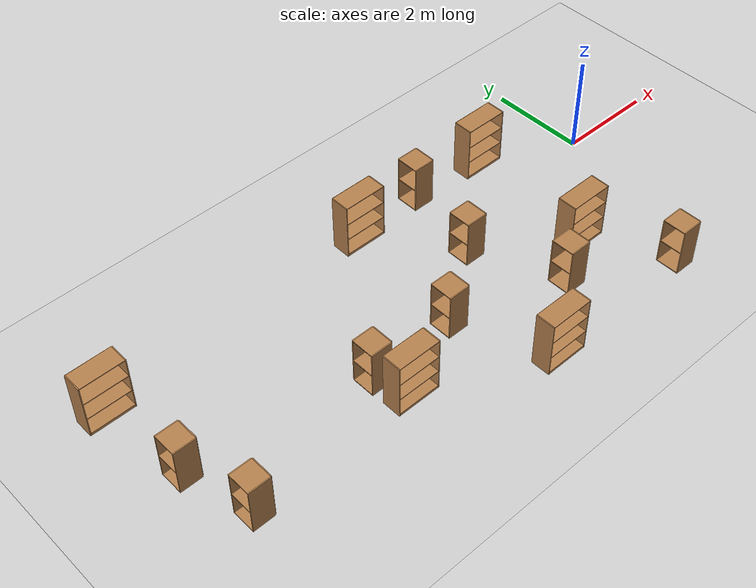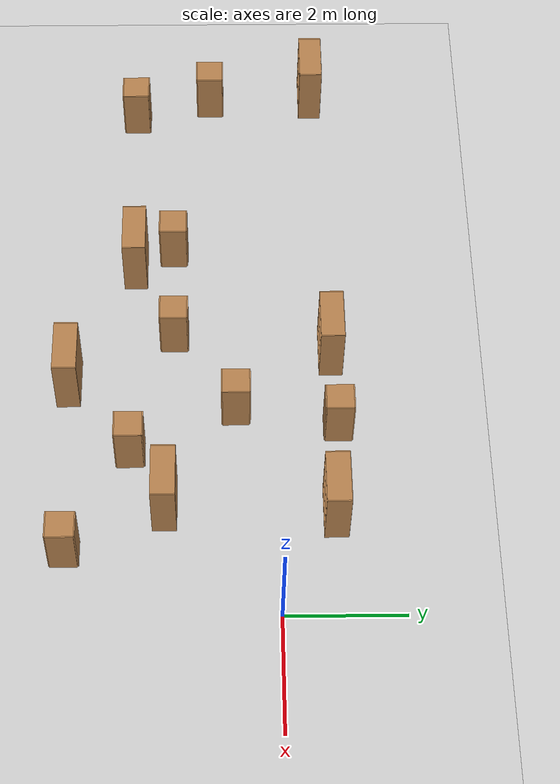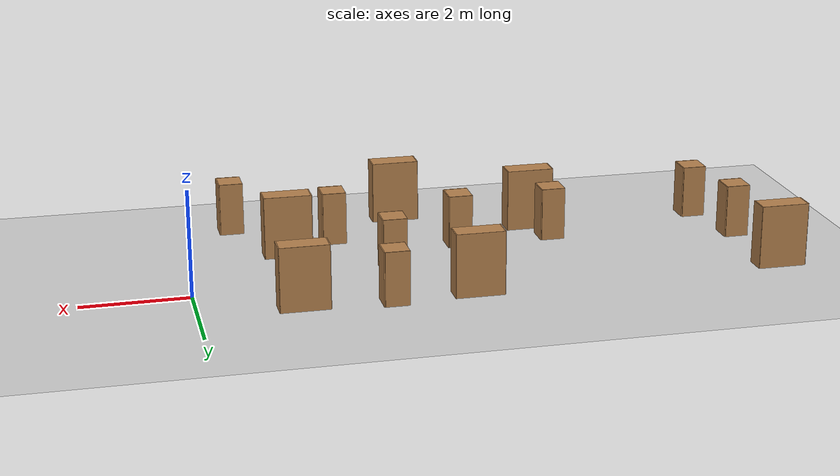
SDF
<sdf version="1.6">
 <world name="default">
  <model name="ground_plane">
   <static>1</static>
   <link name="link">
    <collision name="collision">
     <geometry><plane><normal>0 0 1</normal><size>100 100</size></plane></geometry>
     <surface><friction><ode><mu>100</mu><mu2>50</mu2></ode></friction></surface>
    </collision>
    <visual name="visual">
     <cast_shadows>0</cast_shadows>
     <geometry><plane><normal>0 0 1</normal><size>100 100</size></plane></geometry>
     <material>
      <script><uri>file://media/materials/scripts/gazebo.material</uri><name>Gazebo/Grey</name></script>
     </material>
    </visual>
   </link>
  </model>
  <model name="bookshelf_20">
   <static>1</static>
   <link name="link">
    <inertial><mass>1</mass></inertial>
    <collision name="back">
     <pose>0 0.005 0.6 0 -0 0</pose>
     <geometry><box><size>0.9 0.01 1.2</size></box></geometry>
    </collision>
    <visual name="visual1">
     <pose>0 0.005 0.6 0 -0 0</pose>
     <geometry><box><size>0.9 0.01 1.2</size></box></geometry>
     <material>
      <script><uri>file://media/materials/scripts/gazebo.material</uri><name>Gazebo/Wood</name></script>
     </material>
    </visual>
    <collision name="left_side">
     <pose>0.45 -0.195 0.6 0 -0 0</pose>
     <geometry><box><size>0.02 0.4 1.2</size></box></geometry>
    </collision>
    <visual name="visual2">
     <pose>0.45 -0.195 0.6 0 -0 0</pose>
     <geometry><box><size>0.02 0.4 1.2</size></box></geometry>
     <material>
      <script><uri>file://media/materials/scripts/gazebo.material</uri><name>Gazebo/Wood</name></script>
     </material>
    </visual>
    <collision name="right_side">
     <pose>-0.45 -0.195 0.6 0 -0 0</pose>
     <geometry><box><size>0.02 0.4 1.2</size></box></geometry>
    </collision>
    <visual name="visual3">
     <pose>-0.45 -0.195 0.6 0 -0 0</pose>
     <geometry><box><size>0.02 0.4 1.2</size></box></geometry>
     <material>
      <script><uri>file://media/materials/scripts/gazebo.material</uri><name>Gazebo/Wood</name></script>
     </material>
    </visual>
    <collision name="bottom">
     <pose>0 -0.195 0.03 0 -0 0</pose>
     <geometry><box><size>0.88 0.4 0.06</size></box></geometry>
    </collision>
    <visual name="visual4">
     <pose>0 -0.195 0.03 0 -0 0</pose>
     <geometry><box><size>0.88 0.4 0.06</size></box></geometry>
     <material>
      <script><uri>file://media/materials/scripts/gazebo.material</uri><name>Gazebo/Wood</name></script>
     </material>
    </visual>
    <collision name="top">
     <pose>0 -0.195 1.19 0 -0 0</pose>
     <geometry><box><size>0.88 0.4 0.02</size></box></geometry>
    </collision>
    <visual name="visual5">
     <pose>0 -0.195 1.19 0 -0 0</pose>
     <geometry><box><size>0.88 0.4 0.02</size></box></geometry>
     <material>
      <script><uri>file://media/materials/scripts/gazebo.material</uri><name>Gazebo/Wood</name></script>
     </material>
    </visual>
    <collision name="low_shelf">
     <pose>0 -0.195 0.43 0 -0 0</pose>
     <geometry><box><size>0.88 0.4 0.02</size></box></geometry>
    </collision>
    <visual name="visual6">
     <pose>0 -0.195 0.43 0 -0 0</pose>
     <geometry><box><size>0.88 0.4 0.02</size></box></geometry>
     <material>
      <script><uri>file://media/materials/scripts/gazebo.material</uri><name>Gazebo/Wood</name></script>
     </material>
    </visual>
    <collision name="high_shelf">
     <pose>0 -0.195 0.8 0 -0 0</pose>
     <geometry><box><size>0.88 0.4 0.02</size></box></geometry>
    </collision>
    <visual name="visual7">
     <pose>0 -0.195 0.8 0 -0 0</pose>
     <geometry><box><size>0.88 0.4 0.02</size></box></geometry>
     <material>
      <script><uri>file://media/materials/scripts/gazebo.material</uri><name>Gazebo/Wood</name></script>
     </material>
    </visual>
   </link>
   <pose>-5.00821 1.12026 0 0 -0 0</pose>
  </model>
  <model name="cabinet_13">
   <static>1</static>
   <link name="cabinet_bottom_plate">
    <inertial>
     <pose>0 0 -1 0 -0 0</pose>
     <inertia><ixx>2.05</ixx><ixy>0</ixy><ixz>0</ixz><iyy>2.05</iyy><iyz>0</iyz><izz>2.05</izz></inertia>
     <mass>25</mass>
    </inertial>
    <collision name="cabinet_bottom_plate_geom">
     <pose>0 0 0.01 0 -0 0</pose>
     <geometry><box><size>0.45 0.45 0.02</size></box></geometry>
    </collision>
    <visual name="cabinet_bottom_plate_geom_visual">
     <pose>0 0 0.01 0 -0 0</pose>
     <geometry><box><size>0.45 0.45 0.02</size></box></geometry>
     <material>
      <script><uri>file://media/materials/scripts/gazebo.material</uri><name>Gazebo/Wood</name></script>
     </material>
    </visual>
    <collision name="cabinet_bottom_plate_geom_cabinet_back_plate">
     <pose>0.235 0 0.51 0 -0 0</pose>
     <geometry><box><size>0.02 0.45 1.02</size></box></geometry>
    </collision>
    <visual name="cabinet_bottom_plate_geom_cabinet_back_plate_visual">
     <pose>0.235 0 0.51 0 -0 0</pose>
     <geometry><box><size>0.02 0.45 1.02</size></box></geometry>
     <material>
      <script><uri>file://media/materials/scripts/gazebo.material</uri><name>Gazebo/Wood</name></script>
     </material>
    </visual>
    <collision name="cabinet_bottom_plate_geom_cabinet_left_plate">
     <pose>0 0.235 0.51 0 -0 0</pose>
     <geometry><box><size>0.45 0.02 1.02</size></box></geometry>
    </collision>
    <visual name="cabinet_bottom_plate_geom_cabinet_left_plate_visual">
     <pose>0 0.235 0.51 0 -0 0</pose>
     <geometry><box><size>0.45 0.02 1.02</size></box></geometry>
     <material>
      <script><uri>file://media/materials/scripts/gazebo.material</uri><name>Gazebo/Wood</name></script>
     </material>
    </visual>
    <collision name="cabinet_bottom_plate_geom_cabinet_middle_plate">
     <pose>0 0 0.51 0 -0 0</pose>
     <geometry><box><size>0.45 0.45 0.02</size></box></geometry>
    </collision>
    <visual name="cabinet_bottom_plate_geom_cabinet_middle_plate_visual">
     <pose>0 0 0.51 0 -0 0</pose>
     <geometry><box><size>0.45 0.45 0.02</size></box></geometry>
     <material>
      <script><uri>file://media/materials/scripts/gazebo.material</uri><name>Gazebo/Wood</name></script>
     </material>
    </visual>
    <collision name="cabinet_bottom_plate_geom_cabinet_right_plate">
     <pose>0 -0.235 0.51 0 -0 0</pose>
     <geometry><box><size>0.45 0.02 1.02</size></box></geometry>
    </collision>
    <visual name="cabinet_bottom_plate_geom_cabinet_right_plate_visual">
     <pose>0 -0.235 0.51 0 -0 0</pose>
     <geometry><box><size>0.45 0.02 1.02</size></box></geometry>
     <material>
      <script><uri>file://media/materials/scripts/gazebo.material</uri><name>Gazebo/Wood</name></script>
     </material>
    </visual>
    <collision name="cabinet_bottom_plate_geom_cabinet_top_plate">
     <pose>0 0 1.01 0 -0 0</pose>
     <geometry><box><size>0.45 0.45 0.02</size></box></geometry>
    </collision>
    <visual name="cabinet_bottom_plate_geom_cabinet_top_plate_visual">
     <pose>0 0 1.01 0 -0 0</pose>
     <geometry><box><size>0.45 0.45 0.02</size></box></geometry>
     <material>
      <script><uri>file://media/materials/scripts/gazebo.material</uri><name>Gazebo/Wood</name></script>
     </material>
    </visual>
   </link>
   <pose>-3.47508 1.00889 0 0 -0 0</pose>
  </model>
  <model name="bookshelf_21">
   <static>1</static>
   <link name="link">
    <inertial><mass>1</mass></inertial>
    <collision name="back">
     <pose>0 0.005 0.6 0 -0 0</pose>
     <geometry><box><size>0.9 0.01 1.2</size></box></geometry>
    </collision>
    <visual name="visual1">
     <pose>0 0.005 0.6 0 -0 0</pose>
     <geometry><box><size>0.9 0.01 1.2</size></box></geometry>
     <material>
      <script><uri>file://media/materials/scripts/gazebo.material</uri><name>Gazebo/Wood</name></script>
     </material>
    </visual>
    <collision name="left_side">
     <pose>0.45 -0.195 0.6 0 -0 0</pose>
     <geometry><box><size>0.02 0.4 1.2</size></box></geometry>
    </collision>
    <visual name="visual2">
     <pose>0.45 -0.195 0.6 0 -0 0</pose>
     <geometry><box><size>0.02 0.4 1.2</size></box></geometry>
     <material>
      <script><uri>file://media/materials/scripts/gazebo.material</uri><name>Gazebo/Wood</name></script>
     </material>
    </visual>
    <collision name="right_side">
     <pose>-0.45 -0.195 0.6 0 -0 0</pose>
     <geometry><box><size>0.02 0.4 1.2</size></box></geometry>
    </collision>
    <visual name="visual3">
     <pose>-0.45 -0.195 0.6 0 -0 0</pose>
     <geometry><box><size>0.02 0.4 1.2</size></box></geometry>
     <material>
      <script><uri>file://media/materials/scripts/gazebo.material</uri><name>Gazebo/Wood</name></script>
     </material>
    </visual>
    <collision name="bottom">
     <pose>0 -0.195 0.03 0 -0 0</pose>
     <geometry><box><size>0.88 0.4 0.06</size></box></geometry>
    </collision>
    <visual name="visual4">
     <pose>0 -0.195 0.03 0 -0 0</pose>
     <geometry><box><size>0.88 0.4 0.06</size></box></geometry>
     <material>
      <script><uri>file://media/materials/scripts/gazebo.material</uri><name>Gazebo/Wood</name></script>
     </material>
    </visual>
    <collision name="top">
     <pose>0 -0.195 1.19 0 -0 0</pose>
     <geometry><box><size>0.88 0.4 0.02</size></box></geometry>
    </collision>
    <visual name="visual5">
     <pose>0 -0.195 1.19 0 -0 0</pose>
     <geometry><box><size>0.88 0.4 0.02</size></box></geometry>
     <material>
      <script><uri>file://media/materials/scripts/gazebo.material</uri><name>Gazebo/Wood</name></script>
     </material>
    </visual>
    <collision name="low_shelf">
     <pose>0 -0.195 0.43 0 -0 0</pose>
     <geometry><box><size>0.88 0.4 0.02</size></box></geometry>
    </collision>
    <visual name="visual6">
     <pose>0 -0.195 0.43 0 -0 0</pose>
     <geometry><box><size>0.88 0.4 0.02</size></box></geometry>
     <material>
      <script><uri>file://media/materials/scripts/gazebo.material</uri><name>Gazebo/Wood</name></script>
     </material>
    </visual>
    <collision name="high_shelf">
     <pose>0 -0.195 0.8 0 -0 0</pose>
     <geometry><box><size>0.88 0.4 0.02</size></box></geometry>
    </collision>
    <visual name="visual7">
     <pose>0 -0.195 0.8 0 -0 0</pose>
     <geometry><box><size>0.88 0.4 0.02</size></box></geometry>
     <material>
      <script><uri>file://media/materials/scripts/gazebo.material</uri><name>Gazebo/Wood</name></script>
     </material>
    </visual>
   </link>
   <pose>-1.86152 1.10866 0 0 -0 0</pose>
  </model>
  <model name="cabinet_18">
   <static>1</static>
   <link name="cabinet_bottom_plate">
    <inertial>
     <pose>0 0 -1 0 -0 0</pose>
     <inertia><ixx>2.05</ixx><ixy>0</ixy><ixz>0</ixz><iyy>2.05</iyy><iyz>0</iyz><izz>2.05</izz></inertia>
     <mass>25</mass>
    </inertial>
    <collision name="cabinet_bottom_plate_geom">
     <pose>0 0 0.01 0 -0 0</pose>
     <geometry><box><size>0.45 0.45 0.02</size></box></geometry>
    </collision>
    <visual name="cabinet_bottom_plate_geom_visual">
     <pose>0 0 0.01 0 -0 0</pose>
     <geometry><box><size>0.45 0.45 0.02</size></box></geometry>
     <material>
      <script><uri>file://media/materials/scripts/gazebo.material</uri><name>Gazebo/Wood</name></script>
     </material>
    </visual>
    <collision name="cabinet_bottom_plate_geom_cabinet_back_plate">
     <pose>0.235 0 0.51 0 -0 0</pose>
     <geometry><box><size>0.02 0.45 1.02</size></box></geometry>
    </collision>
    <visual name="cabinet_bottom_plate_geom_cabinet_back_plate_visual">
     <pose>0.235 0 0.51 0 -0 0</pose>
     <geometry><box><size>0.02 0.45 1.02</size></box></geometry>
     <material>
      <script><uri>file://media/materials/scripts/gazebo.material</uri><name>Gazebo/Wood</name></script>
     </material>
    </visual>
    <collision name="cabinet_bottom_plate_geom_cabinet_left_plate">
     <pose>0 0.235 0.51 0 -0 0</pose>
     <geometry><box><size>0.45 0.02 1.02</size></box></geometry>
    </collision>
    <visual name="cabinet_bottom_plate_geom_cabinet_left_plate_visual">
     <pose>0 0.235 0.51 0 -0 0</pose>
     <geometry><box><size>0.45 0.02 1.02</size></box></geometry>
     <material>
      <script><uri>file://media/materials/scripts/gazebo.material</uri><name>Gazebo/Wood</name></script>
     </material>
    </visual>
    <collision name="cabinet_bottom_plate_geom_cabinet_middle_plate">
     <pose>0 0 0.51 0 -0 0</pose>
     <geometry><box><size>0.45 0.45 0.02</size></box></geometry>
    </collision>
    <visual name="cabinet_bottom_plate_geom_cabinet_middle_plate_visual">
     <pose>0 0 0.51 0 -0 0</pose>
     <geometry><box><size>0.45 0.45 0.02</size></box></geometry>
     <material>
      <script><uri>file://media/materials/scripts/gazebo.material</uri><name>Gazebo/Wood</name></script>
     </material>
    </visual>
    <collision name="cabinet_bottom_plate_geom_cabinet_right_plate">
     <pose>0 -0.235 0.51 0 -0 0</pose>
     <geometry><box><size>0.45 0.02 1.02</size></box></geometry>
    </collision>
    <visual name="cabinet_bottom_plate_geom_cabinet_right_plate_visual">
     <pose>0 -0.235 0.51 0 -0 0</pose>
     <geometry><box><size>0.45 0.02 1.02</size></box></geometry>
     <material>
      <script><uri>file://media/materials/scripts/gazebo.material</uri><name>Gazebo/Wood</name></script>
     </material>
    </visual>
    <collision name="cabinet_bottom_plate_geom_cabinet_top_plate">
     <pose>0 0 1.01 0 -0 0</pose>
     <geometry><box><size>0.45 0.45 0.02</size></box></geometry>
    </collision>
    <visual name="cabinet_bottom_plate_geom_cabinet_top_plate_visual">
     <pose>0 0 1.01 0 -0 0</pose>
     <geometry><box><size>0.45 0.45 0.02</size></box></geometry>
     <material>
      <script><uri>file://media/materials/scripts/gazebo.material</uri><name>Gazebo/Wood</name></script>
     </material>
    </visual>
   </link>
   <pose>-7.13697 -1.78282 0 0 -0 0</pose>
  </model>
  <model name="cabinet_19">
   <static>1</static>
   <link name="cabinet_bottom_plate">
    <inertial>
     <pose>0 0 -1 0 -0 0</pose>
     <inertia><ixx>2.05</ixx><ixy>0</ixy><ixz>0</ixz><iyy>2.05</iyy><iyz>0</iyz><izz>2.05</izz></inertia>
     <mass>25</mass>
    </inertial>
    <collision name="cabinet_bottom_plate_geom">
     <pose>0 0 0.01 0 -0 0</pose>
     <geometry><box><size>0.45 0.45 0.02</size></box></geometry>
    </collision>
    <visual name="cabinet_bottom_plate_geom_visual">
     <pose>0 0 0.01 0 -0 0</pose>
     <geometry><box><size>0.45 0.45 0.02</size></box></geometry>
     <material>
      <script><uri>file://media/materials/scripts/gazebo.material</uri><name>Gazebo/Wood</name></script>
     </material>
    </visual>
    <collision name="cabinet_bottom_plate_geom_cabinet_back_plate">
     <pose>0.235 0 0.51 0 -0 0</pose>
     <geometry><box><size>0.02 0.45 1.02</size></box></geometry>
    </collision>
    <visual name="cabinet_bottom_plate_geom_cabinet_back_plate_visual">
     <pose>0.235 0 0.51 0 -0 0</pose>
     <geometry><box><size>0.02 0.45 1.02</size></box></geometry>
     <material>
      <script><uri>file://media/materials/scripts/gazebo.material</uri><name>Gazebo/Wood</name></script>
     </material>
    </visual>
    <collision name="cabinet_bottom_plate_geom_cabinet_left_plate">
     <pose>0 0.235 0.51 0 -0 0</pose>
     <geometry><box><size>0.45 0.02 1.02</size></box></geometry>
    </collision>
    <visual name="cabinet_bottom_plate_geom_cabinet_left_plate_visual">
     <pose>0 0.235 0.51 0 -0 0</pose>
     <geometry><box><size>0.45 0.02 1.02</size></box></geometry>
     <material>
      <script><uri>file://media/materials/scripts/gazebo.material</uri><name>Gazebo/Wood</name></script>
     </material>
    </visual>
    <collision name="cabinet_bottom_plate_geom_cabinet_middle_plate">
     <pose>0 0 0.51 0 -0 0</pose>
     <geometry><box><size>0.45 0.45 0.02</size></box></geometry>
    </collision>
    <visual name="cabinet_bottom_plate_geom_cabinet_middle_plate_visual">
     <pose>0 0 0.51 0 -0 0</pose>
     <geometry><box><size>0.45 0.45 0.02</size></box></geometry>
     <material>
      <script><uri>file://media/materials/scripts/gazebo.material</uri><name>Gazebo/Wood</name></script>
     </material>
    </visual>
    <collision name="cabinet_bottom_plate_geom_cabinet_right_plate">
     <pose>0 -0.235 0.51 0 -0 0</pose>
     <geometry><box><size>0.45 0.02 1.02</size></box></geometry>
    </collision>
    <visual name="cabinet_bottom_plate_geom_cabinet_right_plate_visual">
     <pose>0 -0.235 0.51 0 -0 0</pose>
     <geometry><box><size>0.45 0.02 1.02</size></box></geometry>
     <material>
      <script><uri>file://media/materials/scripts/gazebo.material</uri><name>Gazebo/Wood</name></script>
     </material>
    </visual>
    <collision name="cabinet_bottom_plate_geom_cabinet_top_plate">
     <pose>0 0 1.01 0 -0 0</pose>
     <geometry><box><size>0.45 0.45 0.02</size></box></geometry>
    </collision>
    <visual name="cabinet_bottom_plate_geom_cabinet_top_plate_visual">
     <pose>0 0 1.01 0 -0 0</pose>
     <geometry><box><size>0.45 0.45 0.02</size></box></geometry>
     <material>
      <script><uri>file://media/materials/scripts/gazebo.material</uri><name>Gazebo/Wood</name></script>
     </material>
    </visual>
   </link>
   <pose>-5.29615 -1.75686 0 0 -0 0</pose>
  </model>
  <model name="cabinet_20">
   <static>1</static>
   <link name="cabinet_bottom_plate">
    <inertial>
     <pose>0 0 -1 0 -0 0</pose>
     <inertia><ixx>2.05</ixx><ixy>0</ixy><ixz>0</ixz><iyy>2.05</iyy><iyz>0</iyz><izz>2.05</izz></inertia>
     <mass>25</mass>
    </inertial>
    <collision name="cabinet_bottom_plate_geom">
     <pose>0 0 0.01 0 -0 0</pose>
     <geometry><box><size>0.45 0.45 0.02</size></box></geometry>
    </collision>
    <visual name="cabinet_bottom_plate_geom_visual">
     <pose>0 0 0.01 0 -0 0</pose>
     <geometry><box><size>0.45 0.45 0.02</size></box></geometry>
     <material>
      <script><uri>file://media/materials/scripts/gazebo.material</uri><name>Gazebo/Wood</name></script>
     </material>
    </visual>
    <collision name="cabinet_bottom_plate_geom_cabinet_back_plate">
     <pose>0.235 0 0.51 0 -0 0</pose>
     <geometry><box><size>0.02 0.45 1.02</size></box></geometry>
    </collision>
    <visual name="cabinet_bottom_plate_geom_cabinet_back_plate_visual">
     <pose>0.235 0 0.51 0 -0 0</pose>
     <geometry><box><size>0.02 0.45 1.02</size></box></geometry>
     <material>
      <script><uri>file://media/materials/scripts/gazebo.material</uri><name>Gazebo/Wood</name></script>
     </material>
    </visual>
    <collision name="cabinet_bottom_plate_geom_cabinet_left_plate">
     <pose>0 0.235 0.51 0 -0 0</pose>
     <geometry><box><size>0.45 0.02 1.02</size></box></geometry>
    </collision>
    <visual name="cabinet_bottom_plate_geom_cabinet_left_plate_visual">
     <pose>0 0.235 0.51 0 -0 0</pose>
     <geometry><box><size>0.45 0.02 1.02</size></box></geometry>
     <material>
      <script><uri>file://media/materials/scripts/gazebo.material</uri><name>Gazebo/Wood</name></script>
     </material>
    </visual>
    <collision name="cabinet_bottom_plate_geom_cabinet_middle_plate">
     <pose>0 0 0.51 0 -0 0</pose>
     <geometry><box><size>0.45 0.45 0.02</size></box></geometry>
    </collision>
    <visual name="cabinet_bottom_plate_geom_cabinet_middle_plate_visual">
     <pose>0 0 0.51 0 -0 0</pose>
     <geometry><box><size>0.45 0.45 0.02</size></box></geometry>
     <material>
      <script><uri>file://media/materials/scripts/gazebo.material</uri><name>Gazebo/Wood</name></script>
     </material>
    </visual>
    <collision name="cabinet_bottom_plate_geom_cabinet_right_plate">
     <pose>0 -0.235 0.51 0 -0 0</pose>
     <geometry><box><size>0.45 0.02 1.02</size></box></geometry>
    </collision>
    <visual name="cabinet_bottom_plate_geom_cabinet_right_plate_visual">
     <pose>0 -0.235 0.51 0 -0 0</pose>
     <geometry><box><size>0.45 0.02 1.02</size></box></geometry>
     <material>
      <script><uri>file://media/materials/scripts/gazebo.material</uri><name>Gazebo/Wood</name></script>
     </material>
    </visual>
    <collision name="cabinet_bottom_plate_geom_cabinet_top_plate">
     <pose>0 0 1.01 0 -0 0</pose>
     <geometry><box><size>0.45 0.45 0.02</size></box></geometry>
    </collision>
    <visual name="cabinet_bottom_plate_geom_cabinet_top_plate_visual">
     <pose>0 0 1.01 0 -0 0</pose>
     <geometry><box><size>0.45 0.45 0.02</size></box></geometry>
     <material>
      <script><uri>file://media/materials/scripts/gazebo.material</uri><name>Gazebo/Wood</name></script>
     </material>
    </visual>
   </link>
   <pose>-3.79962 -0.70559 0 0 -0 0</pose>
  </model>
  <model name="bookshelf_23">
   <static>1</static>
   <link name="link">
    <inertial><mass>1</mass></inertial>
    <collision name="back">
     <pose>0 0.005 0.6 0 -0 0</pose>
     <geometry><box><size>0.9 0.01 1.2</size></box></geometry>
    </collision>
    <visual name="visual1">
     <pose>0 0.005 0.6 0 -0 0</pose>
     <geometry><box><size>0.9 0.01 1.2</size></box></geometry>
     <material>
      <script><uri>file://media/materials/scripts/gazebo.material</uri><name>Gazebo/Wood</name></script>
     </material>
    </visual>
    <collision name="left_side">
     <pose>0.45 -0.195 0.6 0 -0 0</pose>
     <geometry><box><size>0.02 0.4 1.2</size></box></geometry>
    </collision>
    <visual name="visual2">
     <pose>0.45 -0.195 0.6 0 -0 0</pose>
     <geometry><box><size>0.02 0.4 1.2</size></box></geometry>
     <material>
      <script><uri>file://media/materials/scripts/gazebo.material</uri><name>Gazebo/Wood</name></script>
     </material>
    </visual>
    <collision name="right_side">
     <pose>-0.45 -0.195 0.6 0 -0 0</pose>
     <geometry><box><size>0.02 0.4 1.2</size></box></geometry>
    </collision>
    <visual name="visual3">
     <pose>-0.45 -0.195 0.6 0 -0 0</pose>
     <geometry><box><size>0.02 0.4 1.2</size></box></geometry>
     <material>
      <script><uri>file://media/materials/scripts/gazebo.material</uri><name>Gazebo/Wood</name></script>
     </material>
    </visual>
    <collision name="bottom">
     <pose>0 -0.195 0.03 0 -0 0</pose>
     <geometry><box><size>0.88 0.4 0.06</size></box></geometry>
    </collision>
    <visual name="visual4">
     <pose>0 -0.195 0.03 0 -0 0</pose>
     <geometry><box><size>0.88 0.4 0.06</size></box></geometry>
     <material>
      <script><uri>file://media/materials/scripts/gazebo.material</uri><name>Gazebo/Wood</name></script>
     </material>
    </visual>
    <collision name="top">
     <pose>0 -0.195 1.19 0 -0 0</pose>
     <geometry><box><size>0.88 0.4 0.02</size></box></geometry>
    </collision>
    <visual name="visual5">
     <pose>0 -0.195 1.19 0 -0 0</pose>
     <geometry><box><size>0.88 0.4 0.02</size></box></geometry>
     <material>
      <script><uri>file://media/materials/scripts/gazebo.material</uri><name>Gazebo/Wood</name></script>
     </material>
    </visual>
    <collision name="low_shelf">
     <pose>0 -0.195 0.43 0 -0 0</pose>
     <geometry><box><size>0.88 0.4 0.02</size></box></geometry>
    </collision>
    <visual name="visual6">
     <pose>0 -0.195 0.43 0 -0 0</pose>
     <geometry><box><size>0.88 0.4 0.02</size></box></geometry>
     <material>
      <script><uri>file://media/materials/scripts/gazebo.material</uri><name>Gazebo/Wood</name></script>
     </material>
    </visual>
    <collision name="high_shelf">
     <pose>0 -0.195 0.8 0 -0 0</pose>
     <geometry><box><size>0.88 0.4 0.02</size></box></geometry>
    </collision>
    <visual name="visual7">
     <pose>0 -0.195 0.8 0 -0 0</pose>
     <geometry><box><size>0.88 0.4 0.02</size></box></geometry>
     <material>
      <script><uri>file://media/materials/scripts/gazebo.material</uri><name>Gazebo/Wood</name></script>
     </material>
    </visual>
   </link>
   <pose>-2.00438 -1.69287 0 0 -0 0</pose>
  </model>
  <model name="bookshelf_25">
   <static>1</static>
   <link name="link">
    <inertial><mass>1</mass></inertial>
    <collision name="back">
     <pose>0 0.005 0.6 0 -0 0</pose>
     <geometry><box><size>0.9 0.01 1.2</size></box></geometry>
    </collision>
    <visual name="visual1">
     <pose>0 0.005 0.6 0 -0 0</pose>
     <geometry><box><size>0.9 0.01 1.2</size></box></geometry>
     <material>
      <script><uri>file://media/materials/scripts/gazebo.material</uri><name>Gazebo/Wood</name></script>
     </material>
    </visual>
    <collision name="left_side">
     <pose>0.45 -0.195 0.6 0 -0 0</pose>
     <geometry><box><size>0.02 0.4 1.2</size></box></geometry>
    </collision>
    <visual name="visual2">
     <pose>0.45 -0.195 0.6 0 -0 0</pose>
     <geometry><box><size>0.02 0.4 1.2</size></box></geometry>
     <material>
      <script><uri>file://media/materials/scripts/gazebo.material</uri><name>Gazebo/Wood</name></script>
     </material>
    </visual>
    <collision name="right_side">
     <pose>-0.45 -0.195 0.6 0 -0 0</pose>
     <geometry><box><size>0.02 0.4 1.2</size></box></geometry>
    </collision>
    <visual name="visual3">
     <pose>-0.45 -0.195 0.6 0 -0 0</pose>
     <geometry><box><size>0.02 0.4 1.2</size></box></geometry>
     <material>
      <script><uri>file://media/materials/scripts/gazebo.material</uri><name>Gazebo/Wood</name></script>
     </material>
    </visual>
    <collision name="bottom">
     <pose>0 -0.195 0.03 0 -0 0</pose>
     <geometry><box><size>0.88 0.4 0.06</size></box></geometry>
    </collision>
    <visual name="visual4">
     <pose>0 -0.195 0.03 0 -0 0</pose>
     <geometry><box><size>0.88 0.4 0.06</size></box></geometry>
     <material>
      <script><uri>file://media/materials/scripts/gazebo.material</uri><name>Gazebo/Wood</name></script>
     </material>
    </visual>
    <collision name="top">
     <pose>0 -0.195 1.19 0 -0 0</pose>
     <geometry><box><size>0.88 0.4 0.02</size></box></geometry>
    </collision>
    <visual name="visual5">
     <pose>0 -0.195 1.19 0 -0 0</pose>
     <geometry><box><size>0.88 0.4 0.02</size></box></geometry>
     <material>
      <script><uri>file://media/materials/scripts/gazebo.material</uri><name>Gazebo/Wood</name></script>
     </material>
    </visual>
    <collision name="low_shelf">
     <pose>0 -0.195 0.43 0 -0 0</pose>
     <geometry><box><size>0.88 0.4 0.02</size></box></geometry>
    </collision>
    <visual name="visual6">
     <pose>0 -0.195 0.43 0 -0 0</pose>
     <geometry><box><size>0.88 0.4 0.02</size></box></geometry>
     <material>
      <script><uri>file://media/materials/scripts/gazebo.material</uri><name>Gazebo/Wood</name></script>
     </material>
    </visual>
    <collision name="high_shelf">
     <pose>0 -0.195 0.8 0 -0 0</pose>
     <geometry><box><size>0.88 0.4 0.02</size></box></geometry>
    </collision>
    <visual name="visual7">
     <pose>0 -0.195 0.8 0 -0 0</pose>
     <geometry><box><size>0.88 0.4 0.02</size></box></geometry>
     <material>
      <script><uri>file://media/materials/scripts/gazebo.material</uri><name>Gazebo/Wood</name></script>
     </material>
    </visual>
   </link>
   <pose>-6.87231 -2.25978 0 0 -0 0</pose>
  </model>
  <model name="bookshelf_26">
   <static>1</static>
   <link name="link">
    <inertial><mass>1</mass></inertial>
    <collision name="back">
     <pose>0 0.005 0.6 0 -0 0</pose>
     <geometry><box><size>0.9 0.01 1.2</size></box></geometry>
    </collision>
    <visual name="visual1">
     <pose>0 0.005 0.6 0 -0 0</pose>
     <geometry><box><size>0.9 0.01 1.2</size></box></geometry>
     <material>
      <script><uri>file://media/materials/scripts/gazebo.material</uri><name>Gazebo/Wood</name></script>
     </material>
    </visual>
    <collision name="left_side">
     <pose>0.45 -0.195 0.6 0 -0 0</pose>
     <geometry><box><size>0.02 0.4 1.2</size></box></geometry>
    </collision>
    <visual name="visual2">
     <pose>0.45 -0.195 0.6 0 -0 0</pose>
     <geometry><box><size>0.02 0.4 1.2</size></box></geometry>
     <material>
      <script><uri>file://media/materials/scripts/gazebo.material</uri><name>Gazebo/Wood</name></script>
     </material>
    </visual>
    <collision name="right_side">
     <pose>-0.45 -0.195 0.6 0 -0 0</pose>
     <geometry><box><size>0.02 0.4 1.2</size></box></geometry>
    </collision>
    <visual name="visual3">
     <pose>-0.45 -0.195 0.6 0 -0 0</pose>
     <geometry><box><size>0.02 0.4 1.2</size></box></geometry>
     <material>
      <script><uri>file://media/materials/scripts/gazebo.material</uri><name>Gazebo/Wood</name></script>
     </material>
    </visual>
    <collision name="bottom">
     <pose>0 -0.195 0.03 0 -0 0</pose>
     <geometry><box><size>0.88 0.4 0.06</size></box></geometry>
    </collision>
    <visual name="visual4">
     <pose>0 -0.195 0.03 0 -0 0</pose>
     <geometry><box><size>0.88 0.4 0.06</size></box></geometry>
     <material>
      <script><uri>file://media/materials/scripts/gazebo.material</uri><name>Gazebo/Wood</name></script>
     </material>
    </visual>
    <collision name="top">
     <pose>0 -0.195 1.19 0 -0 0</pose>
     <geometry><box><size>0.88 0.4 0.02</size></box></geometry>
    </collision>
    <visual name="visual5">
     <pose>0 -0.195 1.19 0 -0 0</pose>
     <geometry><box><size>0.88 0.4 0.02</size></box></geometry>
     <material>
      <script><uri>file://media/materials/scripts/gazebo.material</uri><name>Gazebo/Wood</name></script>
     </material>
    </visual>
    <collision name="low_shelf">
     <pose>0 -0.195 0.43 0 -0 0</pose>
     <geometry><box><size>0.88 0.4 0.02</size></box></geometry>
    </collision>
    <visual name="visual6">
     <pose>0 -0.195 0.43 0 -0 0</pose>
     <geometry><box><size>0.88 0.4 0.02</size></box></geometry>
     <material>
      <script><uri>file://media/materials/scripts/gazebo.material</uri><name>Gazebo/Wood</name></script>
     </material>
    </visual>
    <collision name="high_shelf">
     <pose>0 -0.195 0.8 0 -0 0</pose>
     <geometry><box><size>0.88 0.4 0.02</size></box></geometry>
    </collision>
    <visual name="visual7">
     <pose>0 -0.195 0.8 0 -0 0</pose>
     <geometry><box><size>0.88 0.4 0.02</size></box></geometry>
     <material>
      <script><uri>file://media/materials/scripts/gazebo.material</uri><name>Gazebo/Wood</name></script>
     </material>
    </visual>
   </link>
   <pose>-4.4021 -3.35321 0 0 -0 0</pose>
  </model>
  <model name="cabinet_25">
   <static>1</static>
   <link name="cabinet_bottom_plate">
    <inertial>
     <pose>0 0 -1 0 -0 0</pose>
     <inertia><ixx>2.05</ixx><ixy>0</ixy><ixz>0</ixz><iyy>2.05</iyy><iyz>0</iyz><izz>2.05</izz></inertia>
     <mass>25</mass>
    </inertial>
    <collision name="cabinet_bottom_plate_geom">
     <pose>0 0 0.01 0 -0 0</pose>
     <geometry><box><size>0.45 0.45 0.02</size></box></geometry>
    </collision>
    <visual name="cabinet_bottom_plate_geom_visual">
     <pose>0 0 0.01 0 -0 0</pose>
     <geometry><box><size>0.45 0.45 0.02</size></box></geometry>
     <material>
      <script><uri>file://media/materials/scripts/gazebo.material</uri><name>Gazebo/Wood</name></script>
     </material>
    </visual>
    <collision name="cabinet_bottom_plate_geom_cabinet_back_plate">
     <pose>0.235 0 0.51 0 -0 0</pose>
     <geometry><box><size>0.02 0.45 1.02</size></box></geometry>
    </collision>
    <visual name="cabinet_bottom_plate_geom_cabinet_back_plate_visual">
     <pose>0.235 0 0.51 0 -0 0</pose>
     <geometry><box><size>0.02 0.45 1.02</size></box></geometry>
     <material>
      <script><uri>file://media/materials/scripts/gazebo.material</uri><name>Gazebo/Wood</name></script>
     </material>
    </visual>
    <collision name="cabinet_bottom_plate_geom_cabinet_left_plate">
     <pose>0 0.235 0.51 0 -0 0</pose>
     <geometry><box><size>0.45 0.02 1.02</size></box></geometry>
    </collision>
    <visual name="cabinet_bottom_plate_geom_cabinet_left_plate_visual">
     <pose>0 0.235 0.51 0 -0 0</pose>
     <geometry><box><size>0.45 0.02 1.02</size></box></geometry>
     <material>
      <script><uri>file://media/materials/scripts/gazebo.material</uri><name>Gazebo/Wood</name></script>
     </material>
    </visual>
    <collision name="cabinet_bottom_plate_geom_cabinet_middle_plate">
     <pose>0 0 0.51 0 -0 0</pose>
     <geometry><box><size>0.45 0.45 0.02</size></box></geometry>
    </collision>
    <visual name="cabinet_bottom_plate_geom_cabinet_middle_plate_visual">
     <pose>0 0 0.51 0 -0 0</pose>
     <geometry><box><size>0.45 0.45 0.02</size></box></geometry>
     <material>
      <script><uri>file://media/materials/scripts/gazebo.material</uri><name>Gazebo/Wood</name></script>
     </material>
    </visual>
    <collision name="cabinet_bottom_plate_geom_cabinet_right_plate">
     <pose>0 -0.235 0.51 0 -0 0</pose>
     <geometry><box><size>0.45 0.02 1.02</size></box></geometry>
    </collision>
    <visual name="cabinet_bottom_plate_geom_cabinet_right_plate_visual">
     <pose>0 -0.235 0.51 0 -0 0</pose>
     <geometry><box><size>0.45 0.02 1.02</size></box></geometry>
     <material>
      <script><uri>file://media/materials/scripts/gazebo.material</uri><name>Gazebo/Wood</name></script>
     </material>
    </visual>
    <collision name="cabinet_bottom_plate_geom_cabinet_top_plate">
     <pose>0 0 1.01 0 -0 0</pose>
     <geometry><box><size>0.45 0.45 0.02</size></box></geometry>
    </collision>
    <visual name="cabinet_bottom_plate_geom_cabinet_top_plate_visual">
     <pose>0 0 1.01 0 -0 0</pose>
     <geometry><box><size>0.45 0.45 0.02</size></box></geometry>
     <material>
      <script><uri>file://media/materials/scripts/gazebo.material</uri><name>Gazebo/Wood</name></script>
     </material>
    </visual>
   </link>
   <pose>-2.98229 -2.4706 0 0 -0 0</pose>
  </model>
  <model name="cabinet_26">
   <static>1</static>
   <link name="cabinet_bottom_plate">
    <inertial>
     <pose>0 0 -1 0 -0 0</pose>
     <inertia><ixx>2.05</ixx><ixy>0</ixy><ixz>0</ixz><iyy>2.05</iyy><iyz>0</iyz><izz>2.05</izz></inertia>
     <mass>25</mass>
    </inertial>
    <collision name="cabinet_bottom_plate_geom">
     <pose>0 0 0.01 0 -0 0</pose>
     <geometry><box><size>0.45 0.45 0.02</size></box></geometry>
    </collision>
    <visual name="cabinet_bottom_plate_geom_visual">
     <pose>0 0 0.01 0 -0 0</pose>
     <geometry><box><size>0.45 0.45 0.02</size></box></geometry>
     <material>
      <script><uri>file://media/materials/scripts/gazebo.material</uri><name>Gazebo/Wood</name></script>
     </material>
    </visual>
    <collision name="cabinet_bottom_plate_geom_cabinet_back_plate">
     <pose>0.235 0 0.51 0 -0 0</pose>
     <geometry><box><size>0.02 0.45 1.02</size></box></geometry>
    </collision>
    <visual name="cabinet_bottom_plate_geom_cabinet_back_plate_visual">
     <pose>0.235 0 0.51 0 -0 0</pose>
     <geometry><box><size>0.02 0.45 1.02</size></box></geometry>
     <material>
      <script><uri>file://media/materials/scripts/gazebo.material</uri><name>Gazebo/Wood</name></script>
     </material>
    </visual>
    <collision name="cabinet_bottom_plate_geom_cabinet_left_plate">
     <pose>0 0.235 0.51 0 -0 0</pose>
     <geometry><box><size>0.45 0.02 1.02</size></box></geometry>
    </collision>
    <visual name="cabinet_bottom_plate_geom_cabinet_left_plate_visual">
     <pose>0 0.235 0.51 0 -0 0</pose>
     <geometry><box><size>0.45 0.02 1.02</size></box></geometry>
     <material>
      <script><uri>file://media/materials/scripts/gazebo.material</uri><name>Gazebo/Wood</name></script>
     </material>
    </visual>
    <collision name="cabinet_bottom_plate_geom_cabinet_middle_plate">
     <pose>0 0 0.51 0 -0 0</pose>
     <geometry><box><size>0.45 0.45 0.02</size></box></geometry>
    </collision>
    <visual name="cabinet_bottom_plate_geom_cabinet_middle_plate_visual">
     <pose>0 0 0.51 0 -0 0</pose>
     <geometry><box><size>0.45 0.45 0.02</size></box></geometry>
     <material>
      <script><uri>file://media/materials/scripts/gazebo.material</uri><name>Gazebo/Wood</name></script>
     </material>
    </visual>
    <collision name="cabinet_bottom_plate_geom_cabinet_right_plate">
     <pose>0 -0.235 0.51 0 -0 0</pose>
     <geometry><box><size>0.45 0.02 1.02</size></box></geometry>
    </collision>
    <visual name="cabinet_bottom_plate_geom_cabinet_right_plate_visual">
     <pose>0 -0.235 0.51 0 -0 0</pose>
     <geometry><box><size>0.45 0.02 1.02</size></box></geometry>
     <material>
      <script><uri>file://media/materials/scripts/gazebo.material</uri><name>Gazebo/Wood</name></script>
     </material>
    </visual>
    <collision name="cabinet_bottom_plate_geom_cabinet_top_plate">
     <pose>0 0 1.01 0 -0 0</pose>
     <geometry><box><size>0.45 0.45 0.02</size></box></geometry>
    </collision>
    <visual name="cabinet_bottom_plate_geom_cabinet_top_plate_visual">
     <pose>0 0 1.01 0 -0 0</pose>
     <geometry><box><size>0.45 0.45 0.02</size></box></geometry>
     <material>
      <script><uri>file://media/materials/scripts/gazebo.material</uri><name>Gazebo/Wood</name></script>
     </material>
    </visual>
   </link>
   <pose>-1.13515 -3.49842 0 0 -0 0</pose>
  </model>
  <model name="bookshelf_46">
   <static>1</static>
   <link name="link">
    <inertial><mass>1</mass></inertial>
    <collision name="back">
     <pose>0 0.005 0.6 0 -0 0</pose>
     <geometry><box><size>0.9 0.01 1.2</size></box></geometry>
    </collision>
    <visual name="visual1">
     <pose>0 0.005 0.6 0 -0 0</pose>
     <geometry><box><size>0.9 0.01 1.2</size></box></geometry>
     <material>
      <script><uri>file://media/materials/scripts/gazebo.material</uri><name>Gazebo/Wood</name></script>
     </material>
    </visual>
    <collision name="left_side">
     <pose>0.45 -0.195 0.6 0 -0 0</pose>
     <geometry><box><size>0.02 0.4 1.2</size></box></geometry>
    </collision>
    <visual name="visual2">
     <pose>0.45 -0.195 0.6 0 -0 0</pose>
     <geometry><box><size>0.02 0.4 1.2</size></box></geometry>
     <material>
      <script><uri>file://media/materials/scripts/gazebo.material</uri><name>Gazebo/Wood</name></script>
     </material>
    </visual>
    <collision name="right_side">
     <pose>-0.45 -0.195 0.6 0 -0 0</pose>
     <geometry><box><size>0.02 0.4 1.2</size></box></geometry>
    </collision>
    <visual name="visual3">
     <pose>-0.45 -0.195 0.6 0 -0 0</pose>
     <geometry><box><size>0.02 0.4 1.2</size></box></geometry>
     <material>
      <script><uri>file://media/materials/scripts/gazebo.material</uri><name>Gazebo/Wood</name></script>
     </material>
    </visual>
    <collision name="bottom">
     <pose>0 -0.195 0.03 0 -0 0</pose>
     <geometry><box><size>0.88 0.4 0.06</size></box></geometry>
    </collision>
    <visual name="visual4">
     <pose>0 -0.195 0.03 0 -0 0</pose>
     <geometry><box><size>0.88 0.4 0.06</size></box></geometry>
     <material>
      <script><uri>file://media/materials/scripts/gazebo.material</uri><name>Gazebo/Wood</name></script>
     </material>
    </visual>
    <collision name="top">
     <pose>0 -0.195 1.19 0 -0 0</pose>
     <geometry><box><size>0.88 0.4 0.02</size></box></geometry>
    </collision>
    <visual name="visual5">
     <pose>0 -0.195 1.19 0 -0 0</pose>
     <geometry><box><size>0.88 0.4 0.02</size></box></geometry>
     <material>
      <script><uri>file://media/materials/scripts/gazebo.material</uri><name>Gazebo/Wood</name></script>
     </material>
    </visual>
    <collision name="low_shelf">
     <pose>0 -0.195 0.43 0 -0 0</pose>
     <geometry><box><size>0.88 0.4 0.02</size></box></geometry>
    </collision>
    <visual name="visual6">
     <pose>0 -0.195 0.43 0 -0 0</pose>
     <geometry><box><size>0.88 0.4 0.02</size></box></geometry>
     <material>
      <script><uri>file://media/materials/scripts/gazebo.material</uri><name>Gazebo/Wood</name></script>
     </material>
    </visual>
    <collision name="high_shelf">
     <pose>0 -0.195 0.8 0 -0 0</pose>
     <geometry><box><size>0.88 0.4 0.02</size></box></geometry>
    </collision>
    <visual name="visual7">
     <pose>0 -0.195 0.8 0 -0 0</pose>
     <geometry><box><size>0.88 0.4 0.02</size></box></geometry>
     <material>
      <script><uri>file://media/materials/scripts/gazebo.material</uri><name>Gazebo/Wood</name></script>
     </material>
    </visual>
   </link>
   <pose>-10.8421 0.919158 0 0 -0 0</pose>
  </model>
  <model name="cabinet_46">
   <static>1</static>
   <link name="cabinet_bottom_plate">
    <inertial>
     <pose>0 0 -1 0 -0 0</pose>
     <inertia><ixx>2.05</ixx><ixy>0</ixy><ixz>0</ixz><iyy>2.05</iyy><iyz>0</iyz><izz>2.05</izz></inertia>
     <mass>25</mass>
    </inertial>
    <collision name="cabinet_bottom_plate_geom">
     <pose>0 0 0.01 0 -0 0</pose>
     <geometry><box><size>0.45 0.45 0.02</size></box></geometry>
    </collision>
    <visual name="cabinet_bottom_plate_geom_visual">
     <pose>0 0 0.01 0 -0 0</pose>
     <geometry><box><size>0.45 0.45 0.02</size></box></geometry>
     <material>
      <script><uri>file://media/materials/scripts/gazebo.material</uri><name>Gazebo/Wood</name></script>
     </material>
    </visual>
    <collision name="cabinet_bottom_plate_geom_cabinet_back_plate">
     <pose>0.235 0 0.51 0 -0 0</pose>
     <geometry><box><size>0.02 0.45 1.02</size></box></geometry>
    </collision>
    <visual name="cabinet_bottom_plate_geom_cabinet_back_plate_visual">
     <pose>0.235 0 0.51 0 -0 0</pose>
     <geometry><box><size>0.02 0.45 1.02</size></box></geometry>
     <material>
      <script><uri>file://media/materials/scripts/gazebo.material</uri><name>Gazebo/Wood</name></script>
     </material>
    </visual>
    <collision name="cabinet_bottom_plate_geom_cabinet_left_plate">
     <pose>0 0.235 0.51 0 -0 0</pose>
     <geometry><box><size>0.45 0.02 1.02</size></box></geometry>
    </collision>
    <visual name="cabinet_bottom_plate_geom_cabinet_left_plate_visual">
     <pose>0 0.235 0.51 0 -0 0</pose>
     <geometry><box><size>0.45 0.02 1.02</size></box></geometry>
     <material>
      <script><uri>file://media/materials/scripts/gazebo.material</uri><name>Gazebo/Wood</name></script>
     </material>
    </visual>
    <collision name="cabinet_bottom_plate_geom_cabinet_middle_plate">
     <pose>0 0 0.51 0 -0 0</pose>
     <geometry><box><size>0.45 0.45 0.02</size></box></geometry>
    </collision>
    <visual name="cabinet_bottom_plate_geom_cabinet_middle_plate_visual">
     <pose>0 0 0.51 0 -0 0</pose>
     <geometry><box><size>0.45 0.45 0.02</size></box></geometry>
     <material>
      <script><uri>file://media/materials/scripts/gazebo.material</uri><name>Gazebo/Wood</name></script>
     </material>
    </visual>
    <collision name="cabinet_bottom_plate_geom_cabinet_right_plate">
     <pose>0 -0.235 0.51 0 -0 0</pose>
     <geometry><box><size>0.45 0.02 1.02</size></box></geometry>
    </collision>
    <visual name="cabinet_bottom_plate_geom_cabinet_right_plate_visual">
     <pose>0 -0.235 0.51 0 -0 0</pose>
     <geometry><box><size>0.45 0.02 1.02</size></box></geometry>
     <material>
      <script><uri>file://media/materials/scripts/gazebo.material</uri><name>Gazebo/Wood</name></script>
     </material>
    </visual>
    <collision name="cabinet_bottom_plate_geom_cabinet_top_plate">
     <pose>0 0 1.01 0 -0 0</pose>
     <geometry><box><size>0.45 0.45 0.02</size></box></geometry>
    </collision>
    <visual name="cabinet_bottom_plate_geom_cabinet_top_plate_visual">
     <pose>0 0 1.01 0 -0 0</pose>
     <geometry><box><size>0.45 0.45 0.02</size></box></geometry>
     <material>
      <script><uri>file://media/materials/scripts/gazebo.material</uri><name>Gazebo/Wood</name></script>
     </material>
    </visual>
   </link>
   <pose>-10.2822 -2.49678 0 0 -0 0</pose>
  </model>
  <model name="cabinet_50">
   <static>1</static>
   <link name="cabinet_bottom_plate">
    <inertial>
     <pose>0 0 -1 0 -0 0</pose>
     <inertia><ixx>2.05</ixx><ixy>0</ixy><ixz>0</ixz><iyy>2.05</iyy><iyz>0</iyz><izz>2.05</izz></inertia>
     <mass>25</mass>
    </inertial>
    <collision name="cabinet_bottom_plate_geom">
     <pose>0 0 0.01 0 -0 0</pose>
     <geometry><box><size>0.45 0.45 0.02</size></box></geometry>
    </collision>
    <visual name="cabinet_bottom_plate_geom_visual">
     <pose>0 0 0.01 0 -0 0</pose>
     <geometry><box><size>0.45 0.45 0.02</size></box></geometry>
     <material>
      <script><uri>file://media/materials/scripts/gazebo.material</uri><name>Gazebo/Wood</name></script>
     </material>
    </visual>
    <collision name="cabinet_bottom_plate_geom_cabinet_back_plate">
     <pose>0.235 0 0.51 0 -0 0</pose>
     <geometry><box><size>0.02 0.45 1.02</size></box></geometry>
    </collision>
    <visual name="cabinet_bottom_plate_geom_cabinet_back_plate_visual">
     <pose>0.235 0 0.51 0 -0 0</pose>
     <geometry><box><size>0.02 0.45 1.02</size></box></geometry>
     <material>
      <script><uri>file://media/materials/scripts/gazebo.material</uri><name>Gazebo/Wood</name></script>
     </material>
    </visual>
    <collision name="cabinet_bottom_plate_geom_cabinet_left_plate">
     <pose>0 0.235 0.51 0 -0 0</pose>
     <geometry><box><size>0.45 0.02 1.02</size></box></geometry>
    </collision>
    <visual name="cabinet_bottom_plate_geom_cabinet_left_plate_visual">
     <pose>0 0.235 0.51 0 -0 0</pose>
     <geometry><box><size>0.45 0.02 1.02</size></box></geometry>
     <material>
      <script><uri>file://media/materials/scripts/gazebo.material</uri><name>Gazebo/Wood</name></script>
     </material>
    </visual>
    <collision name="cabinet_bottom_plate_geom_cabinet_middle_plate">
     <pose>0 0 0.51 0 -0 0</pose>
     <geometry><box><size>0.45 0.45 0.02</size></box></geometry>
    </collision>
    <visual name="cabinet_bottom_plate_geom_cabinet_middle_plate_visual">
     <pose>0 0 0.51 0 -0 0</pose>
     <geometry><box><size>0.45 0.45 0.02</size></box></geometry>
     <material>
      <script><uri>file://media/materials/scripts/gazebo.material</uri><name>Gazebo/Wood</name></script>
     </material>
    </visual>
    <collision name="cabinet_bottom_plate_geom_cabinet_right_plate">
     <pose>0 -0.235 0.51 0 -0 0</pose>
     <geometry><box><size>0.45 0.02 1.02</size></box></geometry>
    </collision>
    <visual name="cabinet_bottom_plate_geom_cabinet_right_plate_visual">
     <pose>0 -0.235 0.51 0 -0 0</pose>
     <geometry><box><size>0.45 0.02 1.02</size></box></geometry>
     <material>
      <script><uri>file://media/materials/scripts/gazebo.material</uri><name>Gazebo/Wood</name></script>
     </material>
    </visual>
    <collision name="cabinet_bottom_plate_geom_cabinet_top_plate">
     <pose>0 0 1.01 0 -0 0</pose>
     <geometry><box><size>0.45 0.45 0.02</size></box></geometry>
    </collision>
    <visual name="cabinet_bottom_plate_geom_cabinet_top_plate_visual">
     <pose>0 0 1.01 0 -0 0</pose>
     <geometry><box><size>0.45 0.45 0.02</size></box></geometry>
     <material>
      <script><uri>file://media/materials/scripts/gazebo.material</uri><name>Gazebo/Wood</name></script>
     </material>
    </visual>
   </link>
   <pose>-10.6698 -1.14154 0 0 -0 0</pose>
  </model>
 </world>
</sdf>
